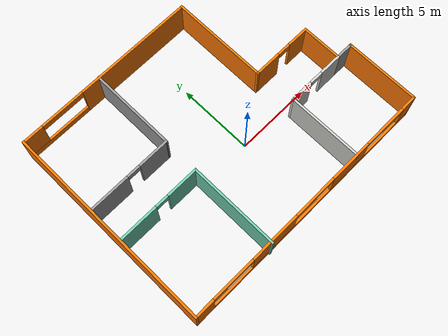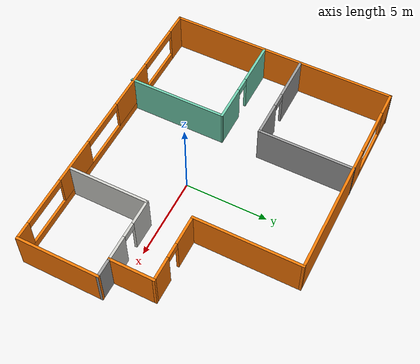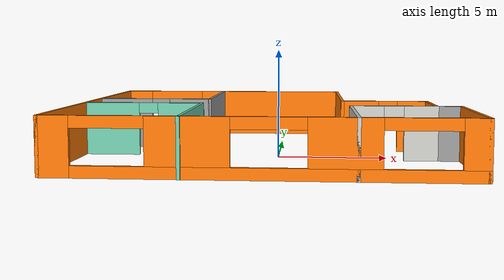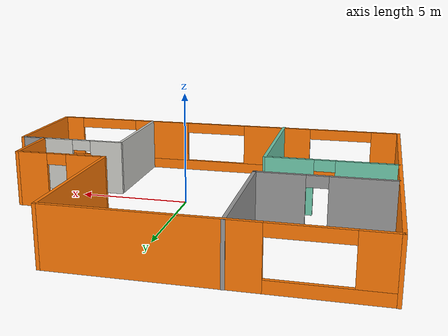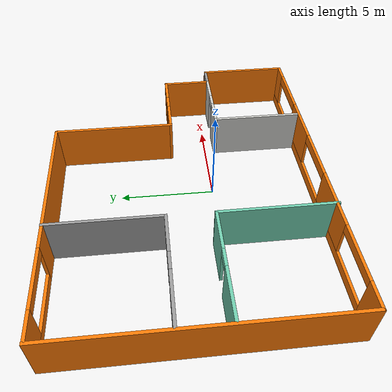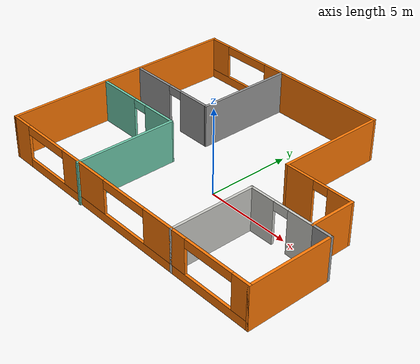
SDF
<?xml version='1.0'?>
<sdf version='1.6'>
  <model name='MyBuilding'>
    <pose frame=''>-0.535 1.45 0 0 -0 0</pose>
    <link name='Wall_10'>
      <collision name='Wall_10_Collision'>
        <geometry>
          <box>
            <size>6.5 0.15 2.5</size>
          </box>
        </geometry>
        <pose frame=''>0 0 1.25 0 -0 0</pose>
      </collision>
      <visual name='Wall_10_Visual'>
        <pose frame=''>0 0 1.25 0 -0 0</pose>
        <geometry>
          <box>
            <size>6.5 0.15 2.5</size>
          </box>
        </geometry>
        <material>
          <script>
            <uri>file://media/materials/scripts/gazebo.material</uri>
            <name>Gazebo/Grey</name>
          </script>
          <ambient>0.996078 0.47451 0.0196078 1</ambient>
        </material>
        <meta>
          <layer>0</layer>
        </meta>
      </visual>
      <pose frame=''>3.6 3.76 0 0 -0 1.5708</pose>
    </link>
    <link name='Wall_11'>
      <pose frame=''>-2.575 6.935 0 0 -0 3.14159</pose>
      <visual name='Wall_11_Visual_0'>
        <pose frame=''>-2.20518 0 1.25 0 -0 0</pose>
        <geometry>
          <box>
            <size>8.08963 0.15 2.5</size>
          </box>
        </geometry>
        <material>
          <script>
            <uri>file://media/materials/scripts/gazebo.material</uri>
            <name>Gazebo/Grey</name>
          </script>
          <ambient>0.996078 0.47451 0.0196078 1</ambient>
        </material>
        <meta>
          <layer>0</layer>
        </meta>
      </visual>
      <collision name='Wall_11_Collision_0'>
        <geometry>
          <box>
            <size>8.08963 0.15 2.5</size>
          </box>
        </geometry>
        <pose frame=''>-2.20518 0 1.25 0 -0 0</pose>
      </collision>
      <visual name='Wall_11_Visual_1'>
        <pose frame=''>4.04482 0 0.25 0 -0 0</pose>
        <geometry>
          <box>
            <size>4.41036 0.15 0.5</size>
          </box>
        </geometry>
        <material>
          <script>
            <uri>file://media/materials/scripts/gazebo.material</uri>
            <name>Gazebo/Grey</name>
          </script>
          <ambient>0.996078 0.47451 0.0196078 1</ambient>
        </material>
        <meta>
          <layer>0</layer>
        </meta>
      </visual>
      <collision name='Wall_11_Collision_1'>
        <geometry>
          <box>
            <size>4.41036 0.15 0.5</size>
          </box>
        </geometry>
        <pose frame=''>4.04482 0 0.25 0 -0 0</pose>
      </collision>
      <visual name='Wall_11_Visual_2'>
        <pose frame=''>5.54482 0 1.5 0 -0 0</pose>
        <geometry>
          <box>
            <size>1.41037 0.15 2</size>
          </box>
        </geometry>
        <material>
          <script>
            <uri>file://media/materials/scripts/gazebo.material</uri>
            <name>Gazebo/Grey</name>
          </script>
          <ambient>0.996078 0.47451 0.0196078 1</ambient>
        </material>
        <meta>
          <layer>0</layer>
        </meta>
      </visual>
      <collision name='Wall_11_Collision_2'>
        <geometry>
          <box>
            <size>1.41037 0.15 2</size>
          </box>
        </geometry>
        <pose frame=''>5.54482 0 1.5 0 -0 0</pose>
      </collision>
      <visual name='Wall_11_Visual_3'>
        <pose frame=''>3.33963 0 2.25 0 -0 0</pose>
        <geometry>
          <box>
            <size>3 0.15 0.5</size>
          </box>
        </geometry>
        <material>
          <script>
            <uri>file://media/materials/scripts/gazebo.material</uri>
            <name>Gazebo/Grey</name>
          </script>
          <ambient>0.996078 0.47451 0.0196078 1</ambient>
        </material>
        <meta>
          <layer>0</layer>
        </meta>
      </visual>
      <collision name='Wall_11_Collision_3'>
        <geometry>
          <box>
            <size>3 0.15 0.5</size>
          </box>
        </geometry>
        <pose frame=''>3.33963 0 2.25 0 -0 0</pose>
      </collision>
    </link>
    <link name='Wall_14'>
      <pose frame=''>-5.934 -1.0785 0 0 0 -0.000536</pose>
      <visual name='Wall_14_Visual_0'>
        <pose frame=''>-1.54624 0 1.25 0 -0 0</pose>
        <geometry>
          <box>
            <size>2.65753 0.15 2.5</size>
          </box>
        </geometry>
        <material>
          <script>
            <uri>file://media/materials/scripts/gazebo.material</uri>
            <name>Gazebo/Grey</name>
          </script>
          <ambient>0.435294 0.796078 0.67451 1</ambient>
        </material>
        <meta>
          <layer>0</layer>
        </meta>
      </visual>
      <collision name='Wall_14_Collision_0'>
        <geometry>
          <box>
            <size>2.65753 0.15 2.5</size>
          </box>
        </geometry>
        <pose frame=''>-1.54624 0 1.25 0 -0 0</pose>
      </collision>
      <visual name='Wall_14_Visual_1'>
        <pose frame=''>1.77877 0 1.25 0 -0 0</pose>
        <geometry>
          <box>
            <size>2.19249 0.15 2.5</size>
          </box>
        </geometry>
        <material>
          <script>
            <uri>file://media/materials/scripts/gazebo.material</uri>
            <name>Gazebo/Grey</name>
          </script>
          <ambient>0.435294 0.796078 0.67451 1</ambient>
        </material>
        <meta>
          <layer>0</layer>
        </meta>
      </visual>
      <collision name='Wall_14_Collision_1'>
        <geometry>
          <box>
            <size>2.19249 0.15 2.5</size>
          </box>
        </geometry>
        <pose frame=''>1.77877 0 1.25 0 -0 0</pose>
      </collision>
      <visual name='Wall_14_Visual_2'>
        <pose frame=''>0.232523 0 2.25 0 -0 0</pose>
        <geometry>
          <box>
            <size>0.9 0.15 0.5</size>
          </box>
        </geometry>
        <material>
          <script>
            <uri>file://media/materials/scripts/gazebo.material</uri>
            <name>Gazebo/Grey</name>
          </script>
          <ambient>0.435294 0.796078 0.67451 1</ambient>
        </material>
        <meta>
          <layer>0</layer>
        </meta>
      </visual>
      <collision name='Wall_14_Collision_2'>
        <geometry>
          <box>
            <size>0.9 0.15 0.5</size>
          </box>
        </geometry>
        <pose frame=''>0.232523 0 2.25 0 -0 0</pose>
      </collision>
    </link>
    <link name='Wall_15'>
      <collision name='Wall_15_Collision'>
        <geometry>
          <box>
            <size>6.02 0.15 2.5</size>
          </box>
        </geometry>
        <pose frame=''>0 0 1.25 0 -0 0</pose>
      </collision>
      <visual name='Wall_15_Visual'>
        <pose frame=''>0 0 1.25 0 -0 0</pose>
        <geometry>
          <box>
            <size>6.02 0.15 2.5</size>
          </box>
        </geometry>
        <material>
          <script>
            <uri>file://media/materials/scripts/gazebo.material</uri>
            <name>Gazebo/Grey</name>
          </script>
          <ambient>0.435294 0.796078 0.67451 1</ambient>
        </material>
        <meta>
          <layer>0</layer>
        </meta>
      </visual>
      <pose frame=''>-3.134 -4.015 0 0 0 -1.5708</pose>
    </link>
    <link name='Wall_17'>
      <pose frame=''>5.775 -2.015 0 0 -0 3.14159</pose>
      <visual name='Wall_17_Visual_0'>
        <pose frame=''>-1.23223 0 1.25 0 -0 0</pose>
        <geometry>
          <box>
            <size>1.53555 0.15 2.5</size>
          </box>
        </geometry>
        <material>
          <script>
            <uri>file://media/materials/scripts/gazebo.material</uri>
            <name>Gazebo/CeilingTiled</name>
          </script>
          <ambient>1 1 1 1</ambient>
        </material>
        <meta>
          <layer>0</layer>
        </meta>
      </visual>
      <collision name='Wall_17_Collision_0'>
        <geometry>
          <box>
            <size>1.53555 0.15 2.5</size>
          </box>
        </geometry>
        <pose frame=''>-1.23223 0 1.25 0 -0 0</pose>
      </collision>
      <visual name='Wall_17_Visual_1'>
        <pose frame=''>1.21777 0 1.25 0 -0 0</pose>
        <geometry>
          <box>
            <size>1.56445 0.15 2.5</size>
          </box>
        </geometry>
        <material>
          <script>
            <uri>file://media/materials/scripts/gazebo.material</uri>
            <name>Gazebo/CeilingTiled</name>
          </script>
          <ambient>1 1 1 1</ambient>
        </material>
        <meta>
          <layer>0</layer>
        </meta>
      </visual>
      <collision name='Wall_17_Collision_1'>
        <geometry>
          <box>
            <size>1.56445 0.15 2.5</size>
          </box>
        </geometry>
        <pose frame=''>1.21777 0 1.25 0 -0 0</pose>
      </collision>
      <visual name='Wall_17_Visual_2'>
        <pose frame=''>-0.014453 0 2.25 0 -0 0</pose>
        <geometry>
          <box>
            <size>0.9 0.15 0.5</size>
          </box>
        </geometry>
        <material>
          <script>
            <uri>file://media/materials/scripts/gazebo.material</uri>
            <name>Gazebo/CeilingTiled</name>
          </script>
          <ambient>1 1 1 1</ambient>
        </material>
        <meta>
          <layer>0</layer>
        </meta>
      </visual>
      <collision name='Wall_17_Collision_2'>
        <geometry>
          <box>
            <size>0.9 0.15 0.5</size>
          </box>
        </geometry>
        <pose frame=''>-0.014453 0 2.25 0 -0 0</pose>
      </collision>
    </link>
    <link name='Wall_18'>
      <collision name='Wall_18_Collision'>
        <geometry>
          <box>
            <size>5 0.15 2.5</size>
          </box>
        </geometry>
        <pose frame=''>0 0 1.25 0 -0 0</pose>
      </collision>
      <visual name='Wall_18_Visual'>
        <pose frame=''>0 0 1.25 0 -0 0</pose>
        <geometry>
          <box>
            <size>5 0.15 2.5</size>
          </box>
        </geometry>
        <material>
          <script>
            <uri>file://media/materials/scripts/gazebo.material</uri>
            <name>Gazebo/CeilingTiled</name>
          </script>
          <ambient>1 1 1 1</ambient>
        </material>
        <meta>
          <layer>0</layer>
        </meta>
      </visual>
      <pose frame=''>3.85 -4.44 0 0 0 -1.5708</pose>
    </link>
    <link name='Wall_2'>
      <collision name='Wall_2_Collision'>
        <geometry>
          <box>
            <size>13.965 0.15 2.5</size>
          </box>
        </geometry>
        <pose frame=''>0 0 1.25 0 -0 0</pose>
      </collision>
      <visual name='Wall_2_Visual'>
        <pose frame=''>0 0 1.25 0 -0 0</pose>
        <geometry>
          <box>
            <size>13.965 0.15 2.5</size>
          </box>
        </geometry>
        <material>
          <script>
            <uri>file://media/materials/scripts/gazebo.material</uri>
            <name>Gazebo/Grey</name>
          </script>
          <ambient>0.996078 0.47451 0.0196078 1</ambient>
        </material>
        <meta>
          <layer>0</layer>
        </meta>
      </visual>
      <pose frame=''>-8.8 0.0425 0 0 0 -1.5708</pose>
    </link>
    <link name='Wall_20'>
      <pose frame=''>-5.90718 1.29035 0 0 0 -0.000126</pose>
      <visual name='Wall_20_Visual_0'>
        <pose frame=''>-1.51978 0 1.25 0 -0 0</pose>
        <geometry>
          <box>
            <size>2.71044 0.15 2.5</size>
          </box>
        </geometry>
        <material>
          <script>
            <uri>file://media/materials/scripts/gazebo.material</uri>
            <name>Gazebo/Grey</name>
          </script>
          <ambient>1 1 1 1</ambient>
        </material>
        <meta>
          <layer>0</layer>
        </meta>
      </visual>
      <collision name='Wall_20_Collision_0'>
        <geometry>
          <box>
            <size>2.71044 0.15 2.5</size>
          </box>
        </geometry>
        <pose frame=''>-1.51978 0 1.25 0 -0 0</pose>
      </collision>
      <visual name='Wall_20_Visual_1'>
        <pose frame=''>1.80522 0 1.25 0 -0 0</pose>
        <geometry>
          <box>
            <size>2.13956 0.15 2.5</size>
          </box>
        </geometry>
        <material>
          <script>
            <uri>file://media/materials/scripts/gazebo.material</uri>
            <name>Gazebo/Grey</name>
          </script>
          <ambient>1 1 1 1</ambient>
        </material>
        <meta>
          <layer>0</layer>
        </meta>
      </visual>
      <collision name='Wall_20_Collision_1'>
        <geometry>
          <box>
            <size>2.13956 0.15 2.5</size>
          </box>
        </geometry>
        <pose frame=''>1.80522 0 1.25 0 -0 0</pose>
      </collision>
      <visual name='Wall_20_Visual_2'>
        <pose frame=''>0.285438 0 2.25 0 -0 0</pose>
        <geometry>
          <box>
            <size>0.9 0.15 0.5</size>
          </box>
        </geometry>
        <material>
          <script>
            <uri>file://media/materials/scripts/gazebo.material</uri>
            <name>Gazebo/Grey</name>
          </script>
          <ambient>1 1 1 1</ambient>
        </material>
        <meta>
          <layer>0</layer>
        </meta>
      </visual>
      <collision name='Wall_20_Collision_2'>
        <geometry>
          <box>
            <size>0.9 0.15 0.5</size>
          </box>
        </geometry>
        <pose frame=''>0.285438 0 2.25 0 -0 0</pose>
      </collision>
    </link>
    <link name='Wall_21'>
      <collision name='Wall_21_Collision'>
        <geometry>
          <box>
            <size>5.81 0.15 2.5</size>
          </box>
        </geometry>
        <pose frame=''>0 0 1.25 0 -0 0</pose>
      </collision>
      <visual name='Wall_21_Visual'>
        <pose frame=''>0 0 1.25 0 -0 0</pose>
        <geometry>
          <box>
            <size>5.81 0.15 2.5</size>
          </box>
        </geometry>
        <material>
          <script>
            <uri>file://media/materials/scripts/gazebo.material</uri>
            <name>Gazebo/Grey</name>
          </script>
          <ambient>1 1 1 1</ambient>
        </material>
        <meta>
          <layer>0</layer>
        </meta>
      </visual>
      <pose frame=''>-3.107 4.12 0 0 -0 1.5708</pose>
    </link>
    <link name='Wall_3'>
      <pose frame=''>0 -6.865 0 0 -0 0</pose>
      <visual name='Wall_3_Visual_0'>
        <pose frame=''>-8.18845 0 1.25 0 -0 0</pose>
        <geometry>
          <box>
            <size>1.37311 0.15 2.5</size>
          </box>
        </geometry>
        <material>
          <script>
            <uri>file://media/materials/scripts/gazebo.material</uri>
            <name>Gazebo/Grey</name>
          </script>
          <ambient>0.996078 0.47451 0.0196078 1</ambient>
        </material>
        <meta>
          <layer>0</layer>
        </meta>
      </visual>
      <collision name='Wall_3_Collision_0'>
        <geometry>
          <box>
            <size>1.37311 0.15 2.5</size>
          </box>
        </geometry>
        <pose frame=''>-8.18845 0 1.25 0 -0 0</pose>
      </collision>
      <visual name='Wall_3_Visual_1'>
        <pose frame=''>0.686554 0 0.25 0 -0 0</pose>
        <geometry>
          <box>
            <size>16.3769 0.15 0.5</size>
          </box>
        </geometry>
        <material>
          <script>
            <uri>file://media/materials/scripts/gazebo.material</uri>
            <name>Gazebo/Grey</name>
          </script>
          <ambient>0.996078 0.47451 0.0196078 1</ambient>
        </material>
        <meta>
          <layer>0</layer>
        </meta>
      </visual>
      <collision name='Wall_3_Collision_1'>
        <geometry>
          <box>
            <size>16.3769 0.15 0.5</size>
          </box>
        </geometry>
        <pose frame=''>0.686554 0 0.25 0 -0 0</pose>
      </collision>
      <visual name='Wall_3_Visual_2'>
        <pose frame=''>-2.80607 0 1.5 0 -0 0</pose>
        <geometry>
          <box>
            <size>3.39165 0.15 2</size>
          </box>
        </geometry>
        <material>
          <script>
            <uri>file://media/materials/scripts/gazebo.material</uri>
            <name>Gazebo/Grey</name>
          </script>
          <ambient>0.996078 0.47451 0.0196078 1</ambient>
        </material>
        <meta>
          <layer>0</layer>
        </meta>
      </visual>
      <collision name='Wall_3_Collision_2'>
        <geometry>
          <box>
            <size>3.39165 0.15 2</size>
          </box>
        </geometry>
        <pose frame=''>-2.80607 0 1.5 0 -0 0</pose>
      </collision>
      <visual name='Wall_3_Visual_3'>
        <pose frame=''>3.34233 0 1.5 0 -0 0</pose>
        <geometry>
          <box>
            <size>2.90515 0.15 2</size>
          </box>
        </geometry>
        <material>
          <script>
            <uri>file://media/materials/scripts/gazebo.material</uri>
            <name>Gazebo/Grey</name>
          </script>
          <ambient>0.996078 0.47451 0.0196078 1</ambient>
        </material>
        <meta>
          <layer>0</layer>
        </meta>
      </visual>
      <collision name='Wall_3_Collision_3'>
        <geometry>
          <box>
            <size>2.90515 0.15 2</size>
          </box>
        </geometry>
        <pose frame=''>3.34233 0 1.5 0 -0 0</pose>
      </collision>
      <visual name='Wall_3_Visual_4'>
        <pose frame=''>8.33495 0 1.5 0 -0 0</pose>
        <geometry>
          <box>
            <size>1.0801 0.15 2</size>
          </box>
        </geometry>
        <material>
          <script>
            <uri>file://media/materials/scripts/gazebo.material</uri>
            <name>Gazebo/Grey</name>
          </script>
          <ambient>0.996078 0.47451 0.0196078 1</ambient>
        </material>
        <meta>
          <layer>0</layer>
        </meta>
      </visual>
      <collision name='Wall_3_Collision_4'>
        <geometry>
          <box>
            <size>1.0801 0.15 2</size>
          </box>
        </geometry>
        <pose frame=''>8.33495 0 1.5 0 -0 0</pose>
      </collision>
      <visual name='Wall_3_Visual_5'>
        <pose frame=''>-6.00189 0 2.25 0 -0 0</pose>
        <geometry>
          <box>
            <size>3 0.15 0.5</size>
          </box>
        </geometry>
        <material>
          <script>
            <uri>file://media/materials/scripts/gazebo.material</uri>
            <name>Gazebo/Grey</name>
          </script>
          <ambient>0.996078 0.47451 0.0196078 1</ambient>
        </material>
        <meta>
          <layer>0</layer>
        </meta>
      </visual>
      <collision name='Wall_3_Collision_5'>
        <geometry>
          <box>
            <size>3 0.15 0.5</size>
          </box>
        </geometry>
        <pose frame=''>-6.00189 0 2.25 0 -0 0</pose>
      </collision>
      <visual name='Wall_3_Visual_6'>
        <pose frame=''>0.389756 0 2.25 0 -0 0</pose>
        <geometry>
          <box>
            <size>3 0.15 0.5</size>
          </box>
        </geometry>
        <material>
          <script>
            <uri>file://media/materials/scripts/gazebo.material</uri>
            <name>Gazebo/Grey</name>
          </script>
          <ambient>0.996078 0.47451 0.0196078 1</ambient>
        </material>
        <meta>
          <layer>0</layer>
        </meta>
      </visual>
      <collision name='Wall_3_Collision_6'>
        <geometry>
          <box>
            <size>3 0.15 0.5</size>
          </box>
        </geometry>
        <pose frame=''>0.389756 0 2.25 0 -0 0</pose>
      </collision>
      <visual name='Wall_3_Visual_7'>
        <pose frame=''>6.2949 0 2.25 0 -0 0</pose>
        <geometry>
          <box>
            <size>3 0.15 0.5</size>
          </box>
        </geometry>
        <material>
          <script>
            <uri>file://media/materials/scripts/gazebo.material</uri>
            <name>Gazebo/Grey</name>
          </script>
          <ambient>0.996078 0.47451 0.0196078 1</ambient>
        </material>
        <meta>
          <layer>0</layer>
        </meta>
      </visual>
      <collision name='Wall_3_Collision_7'>
        <geometry>
          <box>
            <size>3 0.15 0.5</size>
          </box>
        </geometry>
        <pose frame=''>6.2949 0 2.25 0 -0 0</pose>
      </collision>
    </link>
    <link name='Wall_4'>
      <collision name='Wall_4_Collision'>
        <geometry>
          <box>
            <size>5 0.15 2.5</size>
          </box>
        </geometry>
        <pose frame=''>0 0 1.25 0 -0 0</pose>
      </collision>
      <visual name='Wall_4_Visual'>
        <pose frame=''>0 0 1.25 0 -0 0</pose>
        <geometry>
          <box>
            <size>5 0.15 2.5</size>
          </box>
        </geometry>
        <material>
          <script>
            <uri>file://media/materials/scripts/gazebo.material</uri>
            <name>Gazebo/Grey</name>
          </script>
          <ambient>0.996078 0.47451 0.0196078 1</ambient>
        </material>
        <meta>
          <layer>0</layer>
        </meta>
      </visual>
      <pose frame=''>8.8 -4.44 0 0 -0 1.5708</pose>
    </link>
    <link name='Wall_7'>
      <collision name='Wall_7_Collision'>
        <geometry>
          <box>
            <size>1.25 0.15 2.5</size>
          </box>
        </geometry>
        <pose frame=''>0 0 1.25 0 -0 0</pose>
      </collision>
      <visual name='Wall_7_Visual'>
        <pose frame=''>0 0 1.25 0 -0 0</pose>
        <geometry>
          <box>
            <size>1.25 0.15 2.5</size>
          </box>
        </geometry>
        <material>
          <script>
            <uri>file://media/materials/scripts/gazebo.material</uri>
            <name>Gazebo/Grey</name>
          </script>
          <ambient>1 1 1 1</ambient>
        </material>
        <meta>
          <layer>0</layer>
        </meta>
      </visual>
      <pose frame=''>8.25 -2.015 0 0 -0 3.14159</pose>
    </link>
    <link name='Wall_8'>
      <collision name='Wall_8_Collision'>
        <geometry>
          <box>
            <size>2.75 0.15 2.5</size>
          </box>
        </geometry>
        <pose frame=''>0 0 1.25 0 -0 0</pose>
      </collision>
      <visual name='Wall_8_Visual'>
        <pose frame=''>0 0 1.25 0 -0 0</pose>
        <geometry>
          <box>
            <size>2.75 0.15 2.5</size>
          </box>
        </geometry>
        <material>
          <script>
            <uri>file://media/materials/scripts/gazebo.material</uri>
            <name>Gazebo/Grey</name>
          </script>
          <ambient>0.996078 0.47451 0.0196078 1</ambient>
        </material>
        <meta>
          <layer>0</layer>
        </meta>
      </visual>
      <pose frame=''>7.7 -0.715 0 0 -0 1.5708</pose>
    </link>
    <link name='Wall_9'>
      <pose frame=''>5.65 0.585 0 0 -0 3.14159</pose>
      <visual name='Wall_9_Visual_0'>
        <pose frame=''>-1.37053 0 1.25 0 -0 0</pose>
        <geometry>
          <box>
            <size>1.50895 0.15 2.5</size>
          </box>
        </geometry>
        <material>
          <script>
            <uri>file://media/materials/scripts/gazebo.material</uri>
            <name>Gazebo/Grey</name>
          </script>
          <ambient>0.996078 0.47451 0.0196078 1</ambient>
        </material>
        <meta>
          <layer>0</layer>
        </meta>
      </visual>
      <collision name='Wall_9_Collision_0'>
        <geometry>
          <box>
            <size>1.50895 0.15 2.5</size>
          </box>
        </geometry>
        <pose frame=''>-1.37053 0 1.25 0 -0 0</pose>
      </collision>
      <visual name='Wall_9_Visual_1'>
        <pose frame=''>1.20447 0 1.25 0 -0 0</pose>
        <geometry>
          <box>
            <size>1.84105 0.15 2.5</size>
          </box>
        </geometry>
        <material>
          <script>
            <uri>file://media/materials/scripts/gazebo.material</uri>
            <name>Gazebo/Grey</name>
          </script>
          <ambient>0.996078 0.47451 0.0196078 1</ambient>
        </material>
        <meta>
          <layer>0</layer>
        </meta>
      </visual>
      <collision name='Wall_9_Collision_1'>
        <geometry>
          <box>
            <size>1.84105 0.15 2.5</size>
          </box>
        </geometry>
        <pose frame=''>1.20447 0 1.25 0 -0 0</pose>
      </collision>
      <visual name='Wall_9_Visual_2'>
        <pose frame=''>-0.166053 0 2.25 0 -0 0</pose>
        <geometry>
          <box>
            <size>0.9 0.15 0.5</size>
          </box>
        </geometry>
        <material>
          <script>
            <uri>file://media/materials/scripts/gazebo.material</uri>
            <name>Gazebo/Grey</name>
          </script>
          <ambient>0.996078 0.47451 0.0196078 1</ambient>
        </material>
        <meta>
          <layer>0</layer>
        </meta>
      </visual>
      <collision name='Wall_9_Collision_2'>
        <geometry>
          <box>
            <size>0.9 0.15 0.5</size>
          </box>
        </geometry>
        <pose frame=''>-0.166053 0 2.25 0 -0 0</pose>
      </collision>
    </link>
    <static>1</static>
  </model>
</sdf>
